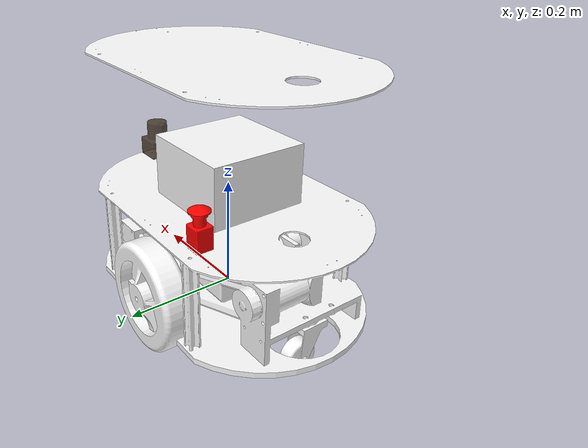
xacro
<?xml version="1.0" encoding="utf-8"?>
<robot name="agv_se">
    <link name="dummy">
    </link>
    <joint name="dummy_joint" type="fixed">
        <parent link="dummy"/>
        <child link="agv_base_link"/>
    </joint>
    <link
            name="agv_base_link">
        <inertial>
            <origin
                    xyz="-3.98803348314178E-05 -1.869040170992E-06 0.0698028354228421"
                    rpy="0 0 0" />
            <mass
                    value="5.35773748413165" />
            <inertia
                    ixx="0.0416362082821188"
                    ixy="0.00767908584961674"
                    ixz="-9.57552739980786E-05"
                    iyy="0.100983289572942"
                    iyz="-1.3734878631137E-06"
                    izz="0.111507828333827" />
        </inertial>
        <visual>
            <origin
                    xyz="0 0 0"
                    rpy="0 0 0" />
            <geometry>
                <mesh
                        filename="package://agv_arm3/meshes/base_link.STL" />
            </geometry>
            <material
                    name="">
                <color
                        rgba="1 1 1 1" />
            </material>
        </visual>
        <collision>
            <origin
                    xyz="0 0 0"
                    rpy="0 0 0" />
            <geometry>
                <mesh
                        filename="package://agv_arm3/meshes/base_link.STL" />
            </geometry>
        </collision>
    </link>
    <link
            name="left_link">
        <inertial>
            <origin
                    xyz="-2.50330754389405E-11 -1.37628312670002E-07 -0.00348654268924592"
                    rpy="0 0 0" />
            <mass
                    value="1.04300354125074" />
            <inertia
                    ixx="0.00314509586133882"
                    ixy="9.39676616140868E-12"
                    ixz="1.16375265117968E-08"
                    iyy="0.00314527309348858"
                    iyz="6.92877962504325E-11"
                    izz="0.00586686223991632" />
        </inertial>
        <visual>
            <origin
                    xyz="0 0 0"
                    rpy="0 0 0" />
            <geometry>
                <mesh
                        filename="package://agv_arm3/meshes/left_link.STL" />
            </geometry>
            <material
                    name="">
                <color
                        rgba="1 1 1 1" />
            </material>
        </visual>
<!--                    xyz="0 0 0"-->
    </link>
    <joint
            name="left_joint"
            type="fixed">
        <origin
                xyz="0 0.1645 0.0325"
                rpy="1.5707963267949 -0.0872664625997164 -3.14159265358979" />
        <parent
                link="agv_base_link" />
        <child
                link="left_link" />
        <axis
                xyz="0 0 -1" />
        <limit
                lower="-1111"
                upper="1111"
                effort="100"
                velocity="10" />
    </joint>
    <link
            name="right_link">
        <inertial>
            <origin
                    xyz="-2.50330325045345E-11 -1.37628312586735E-07 -0.00348654268924595"
                    rpy="0 0 0" />
            <mass
                    value="1.04300354125074" />
            <inertia
                    ixx="0.00314509586133882"
                    ixy="9.39676624272384E-12"
                    ixz="1.16375265118808E-08"
                    iyy="0.00314527309348858"
                    iyz="6.92877958715914E-11"
                    izz="0.00586686223991633" />
        </inertial>
        <visual>
            <origin
                    xyz="0 0 0"
                    rpy="0 0 0" />
            <geometry>
                <mesh
                        filename="package://agv_arm3/meshes/right_link.STL" />
            </geometry>
            <material
                    name="">
                <color
                        rgba="1 1 1 1" />
            </material>
        </visual>
<!--                    xyz="0 0 0"-->
    </link>
    <joint
            name="right_joint"
            type="fixed">
        <origin
                xyz="0 -0.1645 0.0325"
                rpy="1.5707963267949 -0.0872664625997165 0" />
        <parent
                link="agv_base_link" />
        <child
                link="right_link" />
        <axis
                xyz="0 0 -1" />
        <limit
                lower="-1111"
                upper="1111"
                effort="100"
                velocity="10" />
    </joint>
    <link
            name="lidar_link">
        <inertial>
            <origin
                    xyz="-0.000296153234356333 1.12814554343044E-09 -0.0254717812660583"
                    rpy="0 0 0" />
            <mass
                    value="0.131588919004453" />
            <inertia
                    ixx="7.14622431639145E-05"
                    ixy="3.31963504257286E-12"
                    ixz="8.65350822889394E-07"
                    iyy="7.23109738477126E-05"
                    iyz="-2.47141580506267E-12"
                    izz="4.46765670225822E-05" />
        </inertial>
        <visual>
            <origin
                    xyz="0 0 0"
                    rpy="0 0 0" />
            <geometry>
                <mesh filename="package://agv_arm3/meshes/lidar_link.STL" />
            </geometry>
            <material
                    name="">
                <color
                        rgba="0.247 0.186 0.11 0.8" />
            </material>
        </visual>
        <collision>
            <origin
                    xyz="0 0 0"
                    rpy="0 0 0" />
            <geometry>
                <mesh
                        filename="package://agv_arm3/meshes/lidar_link.STL" />
            </geometry>
        </collision>
    </link>
    <joint
            name="lidar_joint"
            type="fixed">
        <origin
                xyz="0.250826797270742 0 0.225842"
                rpy="0 0 0" />
        <parent
                link="agv_base_link" />
        <child
                link="lidar_link" />
        <axis
                xyz="0 0 0" />
    </joint>
    <link
            name="pwr_link">
        <inertial>
            <origin
                    xyz="0.0149998736942567 -0.0149999861468908 -0.0302001764965297"
                    rpy="0 0 0" />
            <mass
                    value="0.0494933865550185" />
            <inertia
                    ixx="2.25636591664424E-05"
                    ixy="-1.57492033053765E-11"
                    ixz="-1.92996311650402E-10"
                    iyy="2.25635485506423E-05"
                    iyz="1.88012265258888E-11"
                    izz="6.57716485866471E-06" />
        </inertial>
        <visual>
            <origin
                    xyz="0 0 0"
                    rpy="0 0 0" />
            <geometry>
                <mesh
                        filename="package://agv_arm3/meshes/pwr_link.STL" />
            </geometry>
            <material
                    name="">
                <color
                        rgba="1 0 0 1" />
            </material>
        </visual>
        <collision>
            <origin
                    xyz="0 0 0"
                    rpy="0 0 0" />
            <geometry>
                <mesh
                        filename="package://agv_arm3/meshes/pwr_link.STL" />
            </geometry>
        </collision>
    </link>
    <joint
            name="pwr_joint"
            type="fixed">
        <origin
                xyz="-0.101416866011464 0.148460110886676 0.170842"
                rpy="3.14159265358979 0 3.14159265358979" />
        <parent
                link="agv_base_link" />
        <child
                link="pwr_link" />
        <axis
                xyz="0 0 0" />
    </joint>
    <link
            name="pc_link">
        <inertial>
            <origin
                    xyz="0.09 -0.09 -0.055"
                    rpy="0 0 0" />
            <mass
                    value="3.564" />
            <inertia
                    ixx="0.0132165"
                    ixy="-1.64022581511141E-18"
                    ixz="1.20013749942464E-19"
                    iyy="0.0132165"
                    iyz="-7.92469639148251E-19"
                    izz="0.0192456" />
        </inertial>
        <visual>
            <origin
                    xyz="0 0 0"
                    rpy="0 0 0" />
            <geometry>
                <mesh
                        filename="package://agv_arm3/meshes/pc_link.STL" />
            </geometry>
            <material
                    name="">
                <color
                        rgba="1 1 1 1" />
            </material>
        </visual>
        <collision>
            <origin
                    xyz="0 0 0"
                    rpy="0 0 0" />
            <geometry>
                <mesh
                        filename="package://agv_arm3/meshes/pc_link.STL" />
            </geometry>
        </collision>
    </link>
    <joint
            name="pc_joint"
            type="fixed">
        <origin
                xyz="0.0894403547066019 0.0899999999999996 0.170842"
                rpy="3.14159265358979 0 3.14159265358979" />
        <parent
                link="agv_base_link" />
        <child
                link="pc_link" />
        <axis
                xyz="0 0 0" />
    </joint>
    <link
            name="front_link1">
        <inertial>
            <origin
                    xyz="0.004549387142184 -0.0150852596625734 -0.000170656801888464"
                    rpy="0 0 0" />
            <mass
                    value="0.0345006559491949" />
            <inertia
                    ixx="2.12981416033921E-05"
                    ixy="5.75050325361956E-06"
                    ixz="-2.10334644735542E-08"
                    iyy="1.14960917480254E-05"
                    iyz="4.74056732758391E-08"
                    izz="2.38494390827954E-05" />
        </inertial>
        <visual>
            <origin
                    xyz="0 0 0"
                    rpy="0 0 0" />
            <geometry>
                <mesh
                        filename="package://agv_arm3/meshes/front_link1.STL" />
            </geometry>
            <material
                    name="">
                <color
                        rgba="1 1 1 1" />
            </material>
        </visual>
<!--                    xyz="0 0 0"-->
    </link>
    <joint
            name="front_joint1"
            type="fixed">
        <origin
                xyz="0.20270815335595 0.0175 0.025"
                rpy="1.5707963267949 0 1.57903983732463" />
        <parent
                link="agv_base_link" />
        <child
                link="front_link1" />
        <axis
                xyz="0 -1 0" />
        <limit
                lower="-1110"
                upper="1110"
                effort="101"
                velocity="11" />
    </joint>
    <link
            name="front_link2">
        <inertial>
            <origin
                    xyz="-0.0125 -9.5024E-11 -6.9405E-08"
                    rpy="0 0 0" />
            <mass
                    value="0.068707" />
            <inertia
                    ixx="2.9519E-05"
                    ixy="-7.4221E-12"
                    ixz="2.1262E-12"
                    iyy="1.8316E-05"
                    iyz="-1.3442E-12"
                    izz="1.8315E-05" />
        </inertial>
        <visual>
            <origin
                    xyz="0 0 0"
                    rpy="0 0 0" />
            <geometry>
                <mesh
                        filename="package://agv_arm3/meshes/front_link2.STL" />
            </geometry>
            <material
                    name="">
                <color
                        rgba="1 1 1 1" />
            </material>
        </visual>
<!--                    xyz="0 0 0"-->
    </link>
    <joint
            name="front_joint2"
            type="fixed">
        <origin
                xyz="0.0210289002174015 -0.06 -0.0125352292752018"
                rpy="0 1.56255281626517 0" />
        <parent
                link="front_link1" />
        <child
                link="front_link2" />
        <axis
                xyz="1 0 0" />
        <limit
                lower="-1910"
                upper="1190"
                effort="111"
                velocity="11" />
    </joint>
    <link
            name="back_link1">
        <inertial>
            <origin
                    xyz="0.00034634 0.0045478 -0.015085"
                    rpy="0 0 0" />
            <mass
                    value="0.034501" />
            <inertia
                    ixx="2.385E-05"
                    ixy="8.8978E-14"
                    ixz="2.6532E-13"
                    iyy="2.1298E-05"
                    iyz="5.7507E-06"
                    izz="1.1496E-05" />
        </inertial>
        <visual>
            <origin
                    xyz="0 0 0"
                    rpy="0 0 0" />
            <geometry>
                <mesh
                        filename="package://agv_arm3/meshes/back_link1.STL" />
            </geometry>
            <material
                    name="">
                <color
                        rgba="1 1 1 1" />
            </material>
        </visual>
<!--                    xyz="0 0 0"-->
    </link>
    <joint
            name="back_joint1"
            type="fixed">
        <origin
                xyz="-0.20285 -0.0175 0.025"
                rpy="0 0 0" />
        <parent
                link="agv_base_link" />
        <child
                link="back_link1" />
        <axis
                xyz="0 0 -1" />
        <limit
                lower="-1110"
                upper="1110"
                effort="110"
                velocity="11" />
    </joint>
    <link
            name="back_link2">
        <inertial>
            <origin
                    xyz="6.9405E-08 -9.5024E-11 -0.0125"
                    rpy="0 0 0" />
            <mass
                    value="0.068707" />
            <inertia
                    ixx="1.8315E-05"
                    ixy="1.3442E-12"
                    ixz="-2.1262E-12"
                    iyy="1.8316E-05"
                    iyz="-7.4221E-12"
                    izz="2.9519E-05" />
        </inertial>
        <visual>
            <origin
                    xyz="0 0 0"
                    rpy="0 0 0" />
            <geometry>
                <mesh
                        filename="package://agv_arm3/meshes/back_link2.STL" />
            </geometry>
            <material
                    name="">
                <color
                        rgba="1 1 1 1" />
            </material>
        </visual>
<!--                    xyz="0 0 0"-->
    </link>
    <joint
            name="back_joint2"
            type="fixed">
        <origin
                xyz="-0.012154 0.020925 -0.06"
                rpy="1.5708 0 -1.5708" />
        <parent
                link="back_link1" />
        <child
                link="back_link2" />
        <axis
                xyz="0 0 1" />
        <limit
                lower="-1110"
                upper="1110"
                effort="110"
                velocity="11" />
    </joint>

    <link name="upper_link">
        <inertial>
            <origin
                    xyz="0 0 0.40"
                    rpy="0 0 0" />
            <mass
                    value="0.068707" />
            <inertia
                    ixx="1.8315E-05"
                    ixy="1.3442E-12"
                    ixz="-2.1262E-12"
                    iyy="1.8316E-05"
                    iyz="-7.4221E-12"
                    izz="2.9519E-05" />
        </inertial>
        <visual>
            <origin xyz="0 0 0.25" rpy="0 0 0" />
            <geometry>
                <mesh filename="package://agv_arm3/meshes/upper_link.STL" />
            </geometry>
            <material
                    name="">
                <color rgba="1 1 1 1" />
            </material>
        </visual>
    </link>
    <joint name="upper_joint" type="fixed">
        <parent link="dummy" />
        <child link="upper_link" />
    </joint>

<!--  gazebo  -->
    <gazebo reference="lidar_link">
        <sensor type="ray" name="head_hokuyo_sensor">
            <pose>0 0 0 0 0 0</pose>
            <visualize>false</visualize>
            <update_rate>60</update_rate>
            <ray>
                <scan>
                    <horizontal>
                        <samples>180</samples>
                        <resolution>1</resolution>
                        <min_angle>-2.0933</min_angle>
                        <max_angle>2.0933</max_angle>
                    </horizontal>
                </scan>
                <range>
                    <min>0.10</min>
                    <max>30.0</max>
                    <resolution>0.01</resolution>
                </range>
                <noise>
                    <type>gaussian</type>
                    <mean>0.0</mean>
                    <stddev>0.01</stddev>
                </noise>
            </ray>
            <plugin name="gazebo_ros_head_hokuyo_controller" filename="libgazebo_ros_laser.so">
                <topicName>/agv/laser/scan</topicName>
                <frameName>lidar_link</frameName>
            </plugin>
        </sensor>
    </gazebo>

    <!-- Gazebo requires the velodyne_gazebo_plugins package -->

    <gazebo reference="dummy">
        <kinematic>1</kinematic>
    </gazebo>
</robot>
